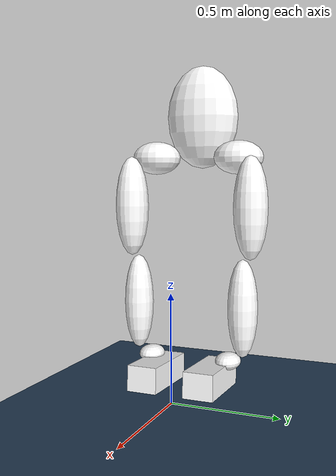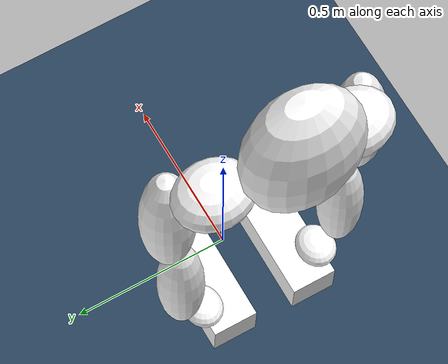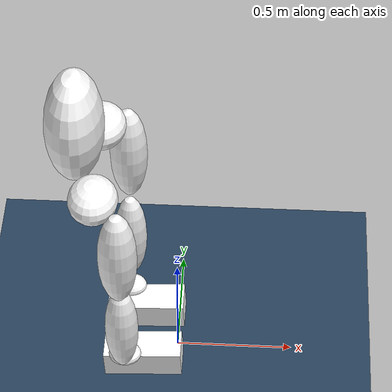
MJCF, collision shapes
<mujoco model='exoskeleton'>
            <compiler meshdir="/home/carlijn/mjx_sysid-main/examples/minipi_sys_id/assets/exo/model/obj-files-decinated" angle="degree" autolimits="true"/>
            <size nuser_actuator='1' nuser_sensor='8' nuser_geom='1'/>
            <option timestep='0.015' iterations='25' solver='CG' gravity='0 0 -9.81'>
                <flag multiccd="enable" energy="enable"/>
            </option>

            <visual>
                <map force="0.1" zfar="30"/>
                <rgba haze="0.15 0.25 0.35 1"/>
                <quality shadowsize="4096"/>
                <global offwidth="800" offheight="800"/>
            </visual>

            <default>
                <site group="5" />
                <motor ctrlrange="-1 1" ctrllimited="true" />
                <geom contype="0" conaffinity="0" condim="1" solref="0.005 1" />
                <equality solref="0.005 1" />
            </default>

            <!-- Nested defaults for exoskeleton, collisions, and joints -->
            <default>
                <default class="exoskeleton">
                <geom material="march_grey" group="2" contype="0" conaffinity="0"/>
                </default>

                <default class="collision">
                <geom type="capsule" group="3" contype="1" conaffinity="1" rgba="1 1 1 0.5"/>
                </default>

                <default class="L_collision">
                <geom type="capsule" group="3" contype="2" conaffinity="4" rgba="1 1 1 0.5"/>
                </default>

                <default class="R_collision">
                <geom type="capsule" group="3" contype="4" conaffinity="2" rgba="1 1 1 0.5"/>
                </default>

                <default class="HAA_joint">
                <joint damping="0" armature="5.4" frictionloss="5" stiffness="0"/>
                </default>

                <default class="ADPF_joint">
                <joint damping="0" armature="2.2" frictionloss="5" stiffness="0"/>
                </default>

                <default class="rotational_joint">
                <joint damping="0" armature="9.98" frictionloss="5" stiffness="0"/>
                </default>

                <default class="AIE_joint">
                <joint damping="0" armature="2.2" frictionloss="5" stiffness="0"/>
                </default>
            </default>

            <asset>
                <texture type="skybox" builtin="gradient" rgb1=".3 .5 .7" rgb2="0 0 0" width="512" height="512"/>
                <texture name="body" type="cube" builtin="flat" mark="cross" width="127" height="1278"
                        rgb1="0.8 0.6 0.4" rgb2="0.8 0.6 0.4" markrgb="1 1 1" random="0.01"/>
                <texture name="grid" type="2d" builtin="checker" width="512" height="512" rgb1=".1 .2 .3" rgb2=".2 .3 .4"/>
                <material name="grid" texture="grid" texrepeat="1 1" texuniform="true" reflectance=".2"/>
                <material name="march_grey" rgba=".87 .89 .91 1"/>
                <material name="collision" rgba="1 0 0 1"/>

                <mesh name="backpack"    scale="-1 1 1"   file="Backplate.obj"/>
                <mesh name="L_Ankle"     scale="-1 -1 1"   file="L_Ankle.obj"/>
                <mesh name="L_Hip"       scale="-1 -1 1"   file="L_Hip.obj"/>
                <mesh name="L_UpperLeg"  scale="-1 -1 1"   file="L_UpperLeg.obj"/>
                <mesh name="L_LowerLeg"  scale="-1 -1 1"   file="L_LowerLeg.obj"/>
                <mesh name="L_Sole"      scale="-1 -1 1"   file="L_Foot.obj"/>

                <mesh name="R_Ankle"     scale="-1 1 1"    file="L_Ankle.obj"/>
                <mesh name="R_Hip"       scale="-1 1 1"    file="L_Hip.obj"/>
                <mesh name="R_UpperLeg"  scale="-1 1 1"    file="L_UpperLeg.obj"/>
                <mesh name="R_LowerLeg"  scale="-1 1 1"    file="L_LowerLeg.obj"/>
                <mesh name="R_Sole"      scale="-1 1 1"    file="L_Foot.obj"/>
            </asset>

  <actuator>
    <motor name="left_ankle_ie" gear="100" joint="left_ankle_ie" />
    <motor name="left_ankle_dpf" gear="100" joint="left_ankle_dpf" />
    <motor name="left_hip_aa" gear="100" joint="left_hip_aa" />
    <motor name="left_hip_fe" gear="100" joint="left_hip_fe" />
    <motor name="left_knee" gear="100" joint="left_knee" />
    <motor name="right_ankle_ie" gear="100" joint="right_ankle_ie" />
    <motor name="right_ankle_dpf" gear="100" joint="right_ankle_dpf" />
    <motor name="right_hip_aa" gear="100" joint="right_hip_aa" />
    <motor name="right_hip_fe" gear="100" joint="right_hip_fe" />
    <motor name="right_knee" gear="100" joint="right_knee" />

  </actuator>

            <sensor>
    <jointpos name="L_AIE_pos_output" joint="left_ankle_ie" user="18" noise="000" />
    <jointpos name="L_ADPF_pos_output" joint="left_ankle_dpf" user="18" noise="000" />
    <jointpos name="L_HAA_pos_output" joint="left_hip_aa" user="18" noise="000" />
    <jointpos name="L_HFE_pos_output" joint="left_hip_fe" user="18" noise="000" />
    <jointpos name="L_KFE_pos_output" joint="left_knee" user="18" noise="000" />
    <jointpos name="R_AIE_pos_output" joint="right_ankle_ie" user="18" noise="000" />
    <jointpos name="R_ADPF_pos_output" joint="right_ankle_dpf" user="18" noise="000" />
    <jointpos name="R_HAA_pos_output" joint="right_hip_aa" user="18" noise="000" />
    <jointpos name="R_HFE_pos_output" joint="right_hip_fe" user="18" noise="000" />
    <jointpos name="R_KFE_pos_output" joint="right_knee" user="18" noise="000" />

    <jointvel name="L_AIE_vel_output" joint="left_ankle_ie" user="18" noise="000" />
    <jointvel name="L_ADPF_vel_output" joint="left_ankle_dpf" user="18" noise="000" />
    <jointvel name="L_HAA_vel_output" joint="left_hip_aa" user="18" noise="000" />
    <jointvel name="L_HFE_vel_output" joint="left_hip_fe" user="18" noise="000" />
    <jointvel name="L_KFE_vel_output" joint="left_knee" user="18" noise="000" />
    <jointvel name="R_AIE_vel_output" joint="right_ankle_ie" user="18" noise="000" />
    <jointvel name="R_ADPF_vel_output" joint="right_ankle_dpf" user="18" noise="000" />
    <jointvel name="R_HAA_vel_output" joint="right_hip_aa" user="18" noise="000" />
    <jointvel name="R_HFE_vel_output" joint="right_hip_fe" user="18" noise="000" />
    <jointvel name="R_KFE_vel_output" joint="right_knee" user="18" noise="000" />

    <torque name="L_AIE_tor_output" site="tor_L_AIE" user="13" noise="000" />
    <torque name="L_ADPF_tor_output" site="tor_L_ADPF" user="13" noise="000" />
    <torque name="L_HAA_tor_output" site="tor_L_HAA" user="13" noise="000" />
    <torque name="L_HFE_tor_output" site="tor_L_HFE" user="13" noise="000" />
    <torque name="L_KFE_tor_output" site="tor_L_KFE" user="13" noise="000" />
    <torque name="R_AIE_tor_output" site="tor_R_AIE" user="13" noise="000" />
    <torque name="R_ADPF_tor_output" site="tor_R_ADPF" user="13" noise="000" />
    <torque name="R_HAA_tor_output" site="tor_R_HAA" user="13" noise="000" />
    <torque name="R_HFE_tor_output" site="tor_R_HFE" user="13" noise="000" />
    <torque name="R_KFE_tor_output" site="tor_R_KFE" user="13" noise="000" />

                <!-- Noise & cutoff must be determined -->
                <framequat name='backpack_orientation' objtype='site' objname='imu_backpack'/>
                <gyro name='vel_imu_backpack' site='imu_backpack' noise='5e-4' cutoff='34.9'/>
                <accelerometer name='acc_imu_backpack' site='imu_backpack' noise='1e-5' cutoff='157'/>

                <framequat name='L_UL_orientation' objtype='site' objname='L_UL_imu'/>
                <gyro name='vel_L_UL_imu' site='L_UL_imu' noise='5e-4' cutoff='34.9'/>
                <accelerometer name='acc_L_UL_imu' site='L_UL_imu' noise='1e-5' cutoff='157'/>

                <framequat name='L_LL_orientation' objtype='site' objname='L_LL_imu'/>
                <gyro name='vel_L_LL_imu' site='L_LL_imu' noise='5e-4' cutoff='34.9'/>
                <accelerometer name='acc_L_LL_imu' site='L_LL_imu' noise='1e-5' cutoff='157'/>

                <framequat name="R_UL_orientation" objtype="site" objname="R_UL_imu"/>
                <gyro name="vel_R_UL_imu" site="R_UL_imu" noise="5e-4" cutoff="34.9"/>
                <accelerometer name="acc_R_UL_imu" site="R_UL_imu" noise="1e-5" cutoff="157"/>

                <framequat name="R_LL_orientation" objtype="site" objname="R_LL_imu"/>
                <gyro name="vel_R_LL_imu" site="R_LL_imu" noise="5e-4" cutoff="34.9"/>
                <accelerometer name="acc_R_LL_imu" site="R_LL_imu" noise="1e-5" cutoff="157"/>
            </sensor>
            <keyframe><key name='home' qpos='0 0 1.01 0.9990482 0 0.0436194 0 0 0.1519 0.3164 0.2236 -0.0 0 0.1519 0.3164 0.2236 -0.0'/></keyframe><worldbody><geom name='floor' size='0 0 .05' type='plane' material='grid' pos='0 0 0' conaffinity='15' condim='6' solref='0.000002 1' solimp='0.99 0.999 0.000001' friction='3 0.005 0.0001'/><light name='spotlight' mode='targetbodycom' target='backpack' diffuse='.8 .8 .8' specular='0.3 0.3 0.3' pos='0 -20 4' cutoff='10'/>
            <body name="safety_catcher" pos="-0.4 0.0 1.03">
            <inertial pos="0 0 0" mass="0.1" diaginertia="10 10 10"/>

            <joint name='safety_catch_free' type='free'/>

      <body name="backpack" pos="0.00000 0.00000 0.28000">
        <light name="top" pos="0.00000 0.00000 2.00000" mode="trackcom" />
        <camera name="diag" pos="3.00000 -2.50000 1.00000" xyaxes="1 1 0 0 1 2" mode="track" />
        <camera name="right" pos="0.00000 -3.00000 1.00000" xyaxes="1 0 0 0 1 2" mode="track" />
        <site name="imu_backpack" size="0.01" pos="0.00000 0.00000 0.00000" />
        <inertial mass="3.205" pos="-0.00400 0 -0.01700" fullinertia="0.13140 0.04400 0.08870 -0.00000 -0.00100 0.00000" />
        <geom name="backpack" type="mesh" mesh="backpack" />
        <geom name="backpack_ellipsoid" type="ellipsoid" size="0.12 0.18 0.25" material="march_grey" class="collision"/>
        <site name="pos_backpack" size="0.001" pos="0.00000 0.00000 0.00000" />

        <body name="L_hip" pos="0.00400 0.09200 -0.20000">
          <inertial mass="3.363" pos="0.12400 0.17000 0.00700" fullinertia="0.11230 0.08360 0.18680 -0.08410 -0.00300 -0.00320" />
          <joint name="left_hip_aa" axis="-1 0 0" range="-20 10" limited="true" class="HAA_joint" />
          <site name="tor_L_HAA" size="0.01" pos="0.00000 0.00000 0.00000" />
          <site name="pos_L_HAA" size="0.01" pos="0.00000 0.00000 0.00000" />
          <geom name="L_Hip" type="mesh" mesh="L_Hip" />
         <geom name="L_Hip_ellipsoid" type="ellipsoid" size="0.10 0.12 0.08" pos="0.08 0.12 0" material="march_grey" class="L_collision"/>

         <body name="L_UL" pos="0.17600 0.24900 0.00100">
            <inertial mass="4.473" pos="0.02600 -0.07500 -0.23600" fullinertia="0.49120 0.46540 0.04310 0.00890 0.02870 -0.11260" />
            <joint name="left_hip_fe" axis="0 -1 0" range="-20 115" limited="true" class="rotational_joint" />
            <site name="tor_L_HFE" size="0.01" pos="0.00000 0.00000 0.00000" />
            <site name="pos_L_HFE" size="0.01" pos="0.00000 0.00000 0.00000" />
            <site name="L_UL_imu" size="0.01" pos="-0.0424275 0.0294287 -0.2288773" />

            <geom name="L_UpperLeg" type="mesh" mesh="L_UpperLeg" />
            <geom name="L_UpperLeg_ellipsoid" type="ellipsoid" size="0.08 0.08 0.24" pos="0 -0.04 -0.235" material="march_grey" class="L_collision"/>

             <body name="L_LL" pos="0.00200 -0.0600 -0.47200">
              <inertial mass="4.973" pos="0.00300 -0.04600 -0.14500" fullinertia="0.21540 0.22000 0.03000 0.00140 -0.00290 -0.03550" />
              <joint name="left_knee" axis="0 1 0" range="0 125" limited="true" class="rotational_joint" />
              <site name="tor_L_KFE" size="0.01" pos="0.00000 0.00000 0.00000" />

              <site name="L_LL_imu" size="0.01" pos="-0.0116665 -0.0191920 -0.1801739" />
              <site name="pos_L_KFE" size="0.01" pos="0.00000 0.00000 0.00000" />
              <geom name="L_LowerLeg" type="mesh" mesh="L_LowerLeg" />
              <geom name="L_LowerLeg_ellipsoid" type="ellipsoid" size="0.07 0.07 0.23" pos="0 -0.015 -0.23" material="march_grey" class="L_collision"/>

                <body name="L_ankle" pos="0.0000 -0.02500 -0.46800">
                <inertial mass="0.515" pos=" 0.00400 -0.06000 -0.01800" fullinertia="0.00240 0.00260 0.00460 0.00010 -0.00000 -0.00060" />
                <joint name="left_ankle_dpf" axis="0 -1 0" range="-28 17" limited="true" class="AIE_joint" />

                <geom name="L_Ankle" type="mesh" mesh="L_Ankle" />
                <geom name="L_Ankle_ellipsoid" type="ellipsoid" size="0.07 0.06 0.04" pos="0 -0.06 -0.015" material="march_grey" class="L_collision"/>
                <site name="tor_L_ADPF" size="0.01" pos="0.00000 0.00000 0.00000" />
                <site name="tor_L_AIE" size="0.01" pos="-0.13100 -0.11400 -0.02600" />
                <site name="pos_L_ankle" size="0.01" pos="0.00000 0.00000 0.00000" />

               <body name="L_foot" pos="-0.13500 -0.1200 -0.02600">
                  <inertial mass="4.440" pos=" 0.16300 0.02400 -0.06000" fullinertia="0.04700 0.19090 0.17630 -0.01390 0.04760 -0.00130" />
                  <joint name="left_ankle_ie" pos="-0.0 -0.0 -0.0" axis="1 0 0" range="-10 10" limited="true" class="AIE_joint" />
                  <site name="pos_L_foot" pos="0.00000 0.00000 0.00000" size="0.01" rgba="1 0 0 0.5" />
                  <geom name="L_foot_ellipsoid" type="box" size="0.1665 0.071 0.06" pos="0.21 0.00000 -0.054" euler="0 -3.0 0" material="march_grey" class="L_collision" />
                  <geom name="L_Foot" type="mesh" mesh="L_Sole" />

                  <site name="sp0" pos="0.07000 -0.03500 -0.11200" type="sphere" size=".01" group="10" />
                  <site name="sp1" pos="0.07000 0.03500 -0.11200" type="sphere" size=".01" group="10" />
                  <site name="sp2" pos="0.27000 -0.03500 -0.10500" type="sphere" size=".01" group="10" />
                  <site name="sp3" pos="0.27000 0.03500 -0.10500" type="sphere" size=".01" group="10" />

                        </body>
                    </body>
                    </body>
                </body>
                </body>

                <!--  RIGHT LEG -->
        <body name="R_hip" pos="0.00400 -0.09200 -0.20000">
          <inertial mass="3.363" pos="0.11200 -0.17000 0.00700" fullinertia="0.11230 0.08360 0.18680 0.08410 -0.00300 0.00320" />
          <joint name="right_hip_aa" axis="1 0 0" range="-20 10" limited="true" class="HAA_joint" />
          <site name="tor_R_HAA" size="0.01" pos="0.00000 0.00000 0.00000" />
          <site name="pos_R_HAA" size="0.01" pos="0.00000 0.00000 0.00000" />

          <geom name="R_Hip" type="mesh" mesh="R_Hip"  />
          <geom name="R_Hip_ellipsoid" type="ellipsoid" size="0.10 0.12 0.08" pos="0.08 -0.12 0" material="march_grey" class="R_collision"/>

          <body name="R_UL" pos="0.17600 -0.24900 0.00100">
            <inertial mass="4.473" pos=" 0.01000 0.06600 -0.22600" fullinertia="0.46570 0.44360 0.03460 -0.00320 0.01130 0.09930" />
            <joint name="right_hip_fe" axis="0 -1 0" range="-20 115" limited="true" class="rotational_joint" />
            <site name="tor_R_HFE" size="0.01" pos="0.00000 0.00000 0.00000" />
            <site name="pos_R_HFE" size="0.01" pos="0.00000 0.00000 0.00000" />
             <site name="R_UL_imu" size="0.01" pos="0.035127 -0.0329461 -0.2269061" />

            <geom name="R_UpperLeg" type="mesh" mesh="R_UpperLeg" />
            <geom name="R_UpperLeg_ellipsoid" type="ellipsoid" size="0.08 0.08 0.24" pos="0 0.04 -0.235" material="march_grey" class="R_collision"/>

            <body name="R_LL" pos="0.00200 0.0600 -0.47200">
              <inertial mass="4.973" pos=" 0.00800 0.03900 -0.14100" fullinertia="0.21540 0.22000 0.03000 -0.00140 -0.00290 0.03550" />
              <joint name="right_knee" axis="0 1 0" range="0 125" limited="true" class="rotational_joint" />
              <site name="tor_R_KFE" size="0.01" pos="0.00000 0.00000 0.00000" />
              <site name="pos_R_KFE" size="0.01" pos="0.00000 0.00000 0.00000" />
              <site name="R_LL_imu" size="0.01" pos="0.0083911 -0.0238741 -0.1807056" />

              <geom name="R_LowerLeg" type="mesh" mesh="R_LowerLeg" />
              <geom name="R_LowerLeg_ellipsoid" type="ellipsoid" size="0.07 0.07 0.23" pos="0 0.015 -0.23" material="march_grey" class="R_collision"/>

             <body name="R_ankle" pos="0.00200 0.02500 -0.46800">
                <inertial mass="0.515" pos=" 0.00400 0.06000 -0.01800" fullinertia="0.00240 0.00270 0.00460 0.00010 0.00000 0.00060" />

                <site name="pos_R_ankle" size="0.01" pos="0.00000 0.00000 0.00000" />
                <site name="tor_R_ADPF" size="0.01" pos="0.00000 0.00000 0.00000" />
                <site name="tor_R_AIE" size="0.01" pos="-0.13100 0.11400 -0.02600" />
                <joint name="right_ankle_dpf" axis="0 -1 0" range="-28 17" limited="true" class="AIE_joint" />

                <geom name="R_Ankle" type="mesh" mesh="R_Ankle" />
                <geom name="R_Ankle_ellipsoid" type="ellipsoid" size="0.07 0.06 0.04" pos="0 0.06 -0.015" material="march_grey" class="R_collision"/>

                <body name="R_foot" pos="-0.13500 0.1200 -0.02600">
                    <joint name="right_ankle_ie" pos="-0.0 0.0 -0.0" axis="-1 0 0" range="-10 10" limited="true" class="AIE_joint" />
                  <inertial mass="4.440" pos=" 0.16700 -0.02600 -0.06100" fullinertia="0.04700 0.19280 0.17840 0.01520 0.04800 0.00080" />
                  <geom name="R_Foot" type="mesh" mesh="R_Sole" />
                  <site name="pos_R_foot" pos="0.00000 0.00000 0.00000" size="0.01" rgba="1 0 0 0.5" />
                  <geom name="R_foot_ellipsoid" type="box" size="0.1665 0.071 0.06" pos="0.21 0.00000 -0.054" euler="0 -3.0 0" material="march_grey" class="R_collision" />

                  <site name="back_foot_center" pos="0.0435 0.0 0.0" type="sphere" size="0.02" group="10" rgba="255 0 0 1.0"/>
                  <!-- back foot center -->
                  <site name="front_foot_center" pos="0.3765 0.0 0.0" type="sphere" size="0.02" group="10" rgba="255 0 0 1.0"/>
                  <!-- front foot center -->

                  <site name="sp4" pos="0.07000 -0.03500 -0.11200" type="sphere" size=".01" group="10" />
                  <site name="sp5" pos="0.07000 0.03500 -0.11200" type="sphere" size=".01" group="10" />
                  <site name="sp6" pos="0.27000 -0.03500 -0.10500" type="sphere" size=".01" group="10" />
                  <site name="sp7" pos="0.27000 0.03500 -0.10500" type="sphere" size=".01" group="10" />

                        </body>
                    </body>
                    </body>
                </body>
                </body>
            </body>
            </body>
        </worldbody></mujoco>
